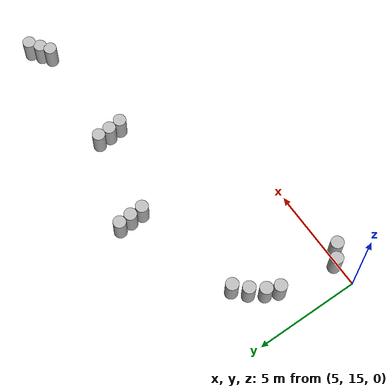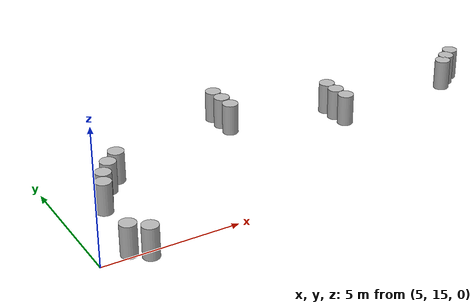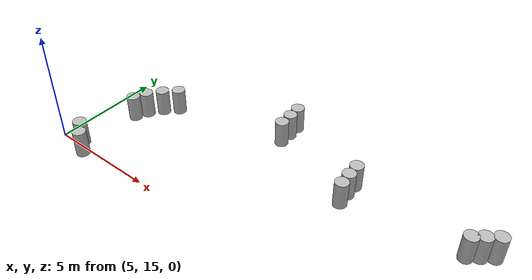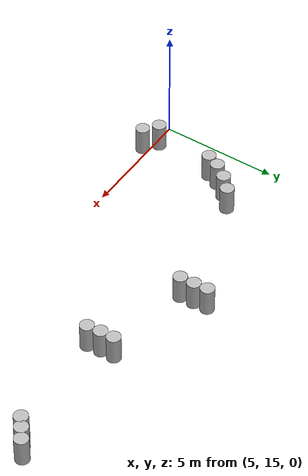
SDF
<sdf version="1.6">
 <world name="default">
  <model name="Construction Barrel_clone_clone_clone_21">
   <link name="link">
    <inertial>
     <pose>0 0 0.5 0 -0 0</pose>
     <mass>500</mass>
     <inertia><ixx>51.2096</ixx><iyy>51.2096</iyy><izz>25</izz><ixy>0</ixy><ixz>0</ixz><iyz>0</iyz></inertia>
    </inertial>
    <collision name="collision">
     <geometry><cylinder><radius>0.3</radius><length>1.2</length></cylinder></geometry>
    </collision>
    <visual name="visual">
     <geometry><cylinder><radius>0.3</radius><length>1.2</length></cylinder></geometry>
     <material>
      <script>
       <uri>model://construction_barrel/materials/scripts</uri>
       <uri>model://construction_barrel/materials/textures</uri>
       <name>construction_barrel/Image</name>
      </script>
     </material>
    </visual>
    <velocity_decay><linear>0</linear><angular>0</angular></velocity_decay>
   </link>
   <pose>22.9894 20.4351 0.613748 0 -0 0</pose>
   <static>1</static>
  </model>
  <model name="Construction Barrel_clone_clone_clone_22">
   <link name="link">
    <inertial>
     <pose>0 0 0.5 0 -0 0</pose>
     <mass>500</mass>
     <inertia><ixx>51.2096</ixx><iyy>51.2096</iyy><izz>25</izz><ixy>0</ixy><ixz>0</ixz><iyz>0</iyz></inertia>
    </inertial>
    <collision name="collision">
     <geometry><cylinder><radius>0.3</radius><length>1.2</length></cylinder></geometry>
    </collision>
    <visual name="visual">
     <geometry><cylinder><radius>0.3</radius><length>1.2</length></cylinder></geometry>
     <material>
      <script>
       <uri>model://construction_barrel/materials/scripts</uri>
       <uri>model://construction_barrel/materials/textures</uri>
       <name>construction_barrel/Image</name>
      </script>
     </material>
    </visual>
    <velocity_decay><linear>0</linear><angular>0</angular></velocity_decay>
   </link>
   <pose>22.5395 20.1033 0.613748 0 -0 0</pose>
   <static>1</static>
  </model>
  <model name="Construction Barrel_clone_clone_clone_23">
   <link name="link">
    <inertial>
     <pose>0 0 0.5 0 -0 0</pose>
     <mass>500</mass>
     <inertia><ixx>51.2096</ixx><iyy>51.2096</iyy><izz>25</izz><ixy>0</ixy><ixz>0</ixz><iyz>0</iyz></inertia>
    </inertial>
    <collision name="collision">
     <geometry><cylinder><radius>0.3</radius><length>1.2</length></cylinder></geometry>
    </collision>
    <visual name="visual">
     <geometry><cylinder><radius>0.3</radius><length>1.2</length></cylinder></geometry>
     <material>
      <script>
       <uri>model://construction_barrel/materials/scripts</uri>
       <uri>model://construction_barrel/materials/textures</uri>
       <name>construction_barrel/Image</name>
      </script>
     </material>
    </visual>
    <velocity_decay><linear>0</linear><angular>0</angular></velocity_decay>
   </link>
   <pose>22.1361 19.7953 0.613748 0 -0 0</pose>
   <static>1</static>
  </model>
  <model name="Construction Barrel_clone_clone_clone_24">
   <link name="link">
    <inertial>
     <pose>0 0 0.5 0 -0 0</pose>
     <mass>500</mass>
     <inertia><ixx>51.2096</ixx><iyy>51.2096</iyy><izz>25</izz><ixy>0</ixy><ixz>0</ixz><iyz>0</iyz></inertia>
    </inertial>
    <collision name="collision">
     <geometry><cylinder><radius>0.3</radius><length>1.2</length></cylinder></geometry>
    </collision>
    <visual name="visual">
     <geometry><cylinder><radius>0.3</radius><length>1.2</length></cylinder></geometry>
     <material>
      <script>
       <uri>model://construction_barrel/materials/scripts</uri>
       <uri>model://construction_barrel/materials/textures</uri>
       <name>construction_barrel/Image</name>
      </script>
     </material>
    </visual>
    <velocity_decay><linear>0</linear><angular>0</angular></velocity_decay>
   </link>
   <pose>12.8643 21.9999 0.613748 0 -0 0</pose>
   <static>1</static>
  </model>
  <model name="Construction Barrel_clone_clone_clone_25">
   <link name="link">
    <inertial>
     <pose>0 0 0.5 0 -0 0</pose>
     <mass>500</mass>
     <inertia><ixx>51.2096</ixx><iyy>51.2096</iyy><izz>25</izz><ixy>0</ixy><ixz>0</ixz><iyz>0</iyz></inertia>
    </inertial>
    <collision name="collision">
     <geometry><cylinder><radius>0.3</radius><length>1.2</length></cylinder></geometry>
    </collision>
    <visual name="visual">
     <geometry><cylinder><radius>0.3</radius><length>1.2</length></cylinder></geometry>
     <material>
      <script>
       <uri>model://construction_barrel/materials/scripts</uri>
       <uri>model://construction_barrel/materials/textures</uri>
       <name>construction_barrel/Image</name>
      </script>
     </material>
    </visual>
    <velocity_decay><linear>0</linear><angular>0</angular></velocity_decay>
   </link>
   <pose>12.9048 21.3989 0.613748 0 -0 0</pose>
   <static>1</static>
  </model>
  <model name="Construction Barrel_clone_clone_clone_26">
   <link name="link">
    <inertial>
     <pose>0 0 0.5 0 -0 0</pose>
     <mass>500</mass>
     <inertia><ixx>51.2096</ixx><iyy>51.2096</iyy><izz>25</izz><ixy>0</ixy><ixz>0</ixz><iyz>0</iyz></inertia>
    </inertial>
    <collision name="collision">
     <geometry><cylinder><radius>0.3</radius><length>1.2</length></cylinder></geometry>
    </collision>
    <visual name="visual">
     <geometry><cylinder><radius>0.3</radius><length>1.2</length></cylinder></geometry>
     <material>
      <script>
       <uri>model://construction_barrel/materials/scripts</uri>
       <uri>model://construction_barrel/materials/textures</uri>
       <name>construction_barrel/Image</name>
      </script>
     </material>
    </visual>
    <velocity_decay><linear>0</linear><angular>0</angular></velocity_decay>
   </link>
   <pose>12.9265 20.7737 0.613748 0 -0 0</pose>
   <static>1</static>
  </model>
  <model name="Construction Barrel_clone_clone_clone_27">
   <link name="link">
    <inertial>
     <pose>0 0 0.5 0 -0 0</pose>
     <mass>500</mass>
     <inertia><ixx>51.2096</ixx><iyy>51.2096</iyy><izz>25</izz><ixy>0</ixy><ixz>0</ixz><iyz>0</iyz></inertia>
    </inertial>
    <collision name="collision">
     <geometry><cylinder><radius>0.3</radius><length>1.2</length></cylinder></geometry>
    </collision>
    <visual name="visual">
     <geometry><cylinder><radius>0.3</radius><length>1.2</length></cylinder></geometry>
     <material>
      <script>
       <uri>model://construction_barrel/materials/scripts</uri>
       <uri>model://construction_barrel/materials/textures</uri>
       <name>construction_barrel/Image</name>
      </script>
     </material>
    </visual>
    <velocity_decay><linear>0</linear><angular>0</angular></velocity_decay>
   </link>
   <pose>17.0701 19.2124 0.613748 0 -0 0</pose>
   <static>1</static>
  </model>
  <model name="Construction Barrel_clone_clone_clone_28">
   <link name="link">
    <inertial>
     <pose>0 0 0.5 0 -0 0</pose>
     <mass>500</mass>
     <inertia><ixx>51.2096</ixx><iyy>51.2096</iyy><izz>25</izz><ixy>0</ixy><ixz>0</ixz><iyz>0</iyz></inertia>
    </inertial>
    <collision name="collision">
     <geometry><cylinder><radius>0.3</radius><length>1.2</length></cylinder></geometry>
    </collision>
    <visual name="visual">
     <geometry><cylinder><radius>0.3</radius><length>1.2</length></cylinder></geometry>
     <material>
      <script>
       <uri>model://construction_barrel/materials/scripts</uri>
       <uri>model://construction_barrel/materials/textures</uri>
       <name>construction_barrel/Image</name>
      </script>
     </material>
    </visual>
    <velocity_decay><linear>0</linear><angular>0</angular></velocity_decay>
   </link>
   <pose>17.0163 19.8152 0.613748 0 -0 0</pose>
   <static>1</static>
  </model>
  <model name="Construction Barrel_clone_clone_clone_29">
   <link name="link">
    <inertial>
     <pose>0 0 0.5 0 -0 0</pose>
     <mass>500</mass>
     <inertia><ixx>51.2096</ixx><iyy>51.2096</iyy><izz>25</izz><ixy>0</ixy><ixz>0</ixz><iyz>0</iyz></inertia>
    </inertial>
    <collision name="collision">
     <geometry><cylinder><radius>0.3</radius><length>1.2</length></cylinder></geometry>
    </collision>
    <visual name="visual">
     <geometry><cylinder><radius>0.3</radius><length>1.2</length></cylinder></geometry>
     <material>
      <script>
       <uri>model://construction_barrel/materials/scripts</uri>
       <uri>model://construction_barrel/materials/textures</uri>
       <name>construction_barrel/Image</name>
      </script>
     </material>
    </visual>
    <velocity_decay><linear>0</linear><angular>0</angular></velocity_decay>
   </link>
   <pose>16.996 20.4051 0.613748 0 -0 0</pose>
   <static>1</static>
  </model>
  <model name="Construction Barrel_clone_clone_clone_30">
   <link name="link">
    <inertial>
     <pose>0 0 0.5 0 -0 0</pose>
     <mass>500</mass>
     <inertia><ixx>51.2096</ixx><iyy>51.2096</iyy><izz>25</izz><ixy>0</ixy><ixz>0</ixz><iyz>0</iyz></inertia>
    </inertial>
    <collision name="collision">
     <geometry><cylinder><radius>0.3</radius><length>1.2</length></cylinder></geometry>
    </collision>
    <visual name="visual">
     <geometry><cylinder><radius>0.3</radius><length>1.2</length></cylinder></geometry>
     <material>
      <script>
       <uri>model://construction_barrel/materials/scripts</uri>
       <uri>model://construction_barrel/materials/textures</uri>
       <name>construction_barrel/Image</name>
      </script>
     </material>
    </visual>
    <velocity_decay><linear>0</linear><angular>0</angular></velocity_decay>
   </link>
   <pose>7.71858 19.6237 0.613748 0 -0 0</pose>
   <static>1</static>
  </model>
  <model name="Construction Barrel_clone_clone_clone_38">
   <link name="link">
    <inertial>
     <pose>0 0 0.5 0 -0 0</pose>
     <mass>500</mass>
     <inertia><ixx>51.2096</ixx><iyy>51.2096</iyy><izz>25</izz><ixy>0</ixy><ixz>0</ixz><iyz>0</iyz></inertia>
    </inertial>
    <collision name="collision">
     <geometry><cylinder><radius>0.3</radius><length>1.2</length></cylinder></geometry>
    </collision>
    <visual name="visual">
     <geometry><cylinder><radius>0.3</radius><length>1.2</length></cylinder></geometry>
     <material>
      <script>
       <uri>model://construction_barrel/materials/scripts</uri>
       <uri>model://construction_barrel/materials/textures</uri>
       <name>construction_barrel/Image</name>
      </script>
     </material>
    </visual>
    <velocity_decay><linear>0</linear><angular>0</angular></velocity_decay>
   </link>
   <pose>7.1837 19.1082 0.613748 0 -0 0</pose>
   <static>1</static>
  </model>
  <model name="Construction Barrel_clone_clone_clone_39">
   <link name="link">
    <inertial>
     <pose>0 0 0.5 0 -0 0</pose>
     <mass>500</mass>
     <inertia><ixx>51.2096</ixx><iyy>51.2096</iyy><izz>25</izz><ixy>0</ixy><ixz>0</ixz><iyz>0</iyz></inertia>
    </inertial>
    <collision name="collision">
     <geometry><cylinder><radius>0.3</radius><length>1.2</length></cylinder></geometry>
    </collision>
    <visual name="visual">
     <geometry><cylinder><radius>0.3</radius><length>1.2</length></cylinder></geometry>
     <material>
      <script>
       <uri>model://construction_barrel/materials/scripts</uri>
       <uri>model://construction_barrel/materials/textures</uri>
       <name>construction_barrel/Image</name>
      </script>
     </material>
    </visual>
    <velocity_decay><linear>0</linear><angular>0</angular></velocity_decay>
   </link>
   <pose>6.74084 18.5227 0.613748 0 -0 0</pose>
   <static>1</static>
  </model>
  <model name="Construction Barrel_clone_clone_clone_40">
   <link name="link">
    <inertial>
     <pose>0 0 0.5 0 -0 0</pose>
     <mass>500</mass>
     <inertia><ixx>51.2096</ixx><iyy>51.2096</iyy><izz>25</izz><ixy>0</ixy><ixz>0</ixz><iyz>0</iyz></inertia>
    </inertial>
    <collision name="collision">
     <geometry><cylinder><radius>0.3</radius><length>1.2</length></cylinder></geometry>
    </collision>
    <visual name="visual">
     <geometry><cylinder><radius>0.3</radius><length>1.2</length></cylinder></geometry>
     <material>
      <script>
       <uri>model://construction_barrel/materials/scripts</uri>
       <uri>model://construction_barrel/materials/textures</uri>
       <name>construction_barrel/Image</name>
      </script>
     </material>
    </visual>
    <velocity_decay><linear>0</linear><angular>0</angular></velocity_decay>
   </link>
   <pose>6.48879 17.9493 0.613748 0 -0 0</pose>
   <static>1</static>
  </model>
  <model name="Construction Barrel_clone_clone_clone_48">
   <link name="link">
    <inertial>
     <pose>0 0 0.5 0 -0 0</pose>
     <mass>500</mass>
     <inertia><ixx>51.2096</ixx><iyy>51.2096</iyy><izz>25</izz><ixy>0</ixy><ixz>0</ixz><iyz>0</iyz></inertia>
    </inertial>
    <collision name="collision">
     <geometry><cylinder><radius>0.3</radius><length>1.2</length></cylinder></geometry>
    </collision>
    <visual name="visual">
     <geometry><cylinder><radius>0.3</radius><length>1.2</length></cylinder></geometry>
     <material>
      <script>
       <uri>model://construction_barrel/materials/scripts</uri>
       <uri>model://construction_barrel/materials/textures</uri>
       <name>construction_barrel/Image</name>
      </script>
     </material>
    </visual>
    <velocity_decay><linear>0</linear><angular>0</angular></velocity_decay>
   </link>
   <pose>6.09515 15.204 0.613748 0 -0 0</pose>
   <static>1</static>
  </model>
  <model name="Construction Barrel_clone_clone_clone_49">
   <link name="link">
    <inertial>
     <pose>0 0 0.5 0 -0 0</pose>
     <mass>500</mass>
     <inertia><ixx>51.2096</ixx><iyy>51.2096</iyy><izz>25</izz><ixy>0</ixy><ixz>0</ixz><iyz>0</iyz></inertia>
    </inertial>
    <collision name="collision">
     <geometry><cylinder><radius>0.3</radius><length>1.2</length></cylinder></geometry>
    </collision>
    <visual name="visual">
     <geometry><cylinder><radius>0.3</radius><length>1.2</length></cylinder></geometry>
     <material>
      <script>
       <uri>model://construction_barrel/materials/scripts</uri>
       <uri>model://construction_barrel/materials/textures</uri>
       <name>construction_barrel/Image</name>
      </script>
     </material>
    </visual>
    <velocity_decay><linear>0</linear><angular>0</angular></velocity_decay>
   </link>
   <pose>6.65375 14.7439 0.613748 0 -0 0</pose>
   <static>1</static>
  </model>
 </world>
</sdf>
